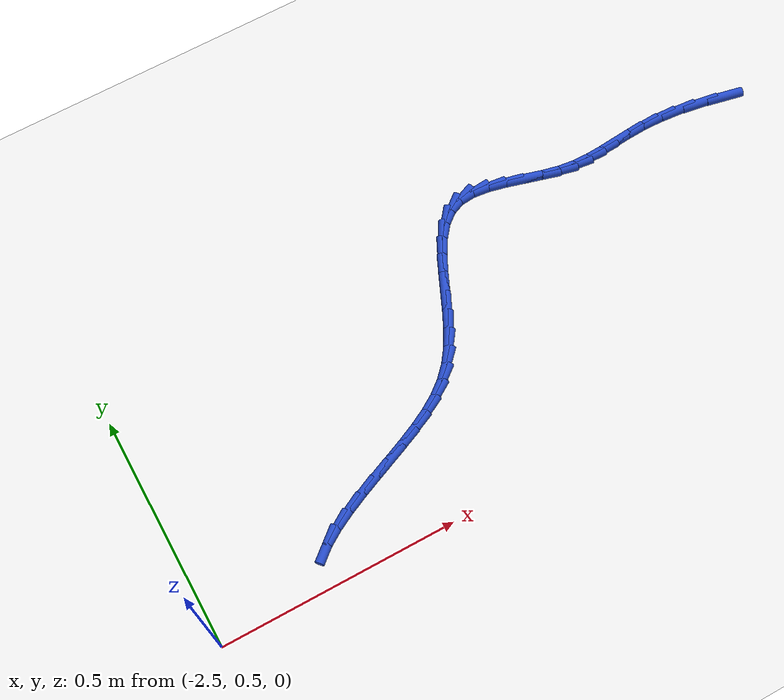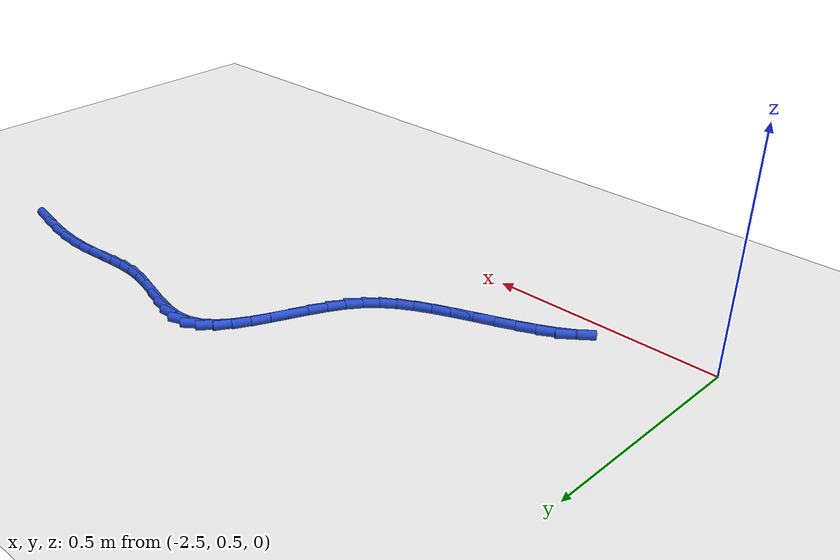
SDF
<sdf version="1.6">
 <world name="default">
  <model name="ground_plane">
   <static>1</static>
   <link name="link">
    <collision name="collision">
     <geometry><plane><normal>0 0 1</normal><size>100 100</size></plane></geometry>
     <surface><friction><ode><mu>100</mu><mu2>50</mu2></ode></friction></surface>
    </collision>
    <visual name="visual">
     <cast_shadows>0</cast_shadows>
     <geometry><plane><normal>0 0 1</normal><size>100 100</size></plane></geometry>
     <material>
      <script><uri>file://media/materials/scripts/gazebo.material</uri><name>Gazebo/WhiteGlow</name></script>
     </material>
    </visual>
   </link>
  </model>
  <model name="line">
   <link name="link_50">
    <pose>-1.050175589777611 1.0270825443489389 0.01 0 1.57 -0.20787791092671823</pose>
    <collision name="collision">
     <geometry><cylinder><radius>0.01</radius><length>0.08</length></cylinder></geometry>
    </collision>
    <visual name="visual">
     <material>
      <script><name>Gazebo/Blue</name><uri>file://media/materials/scripts/gazebo.material</uri></script>
     </material>
     <geometry><cylinder><radius>0.01</radius><length>0.08</length></cylinder></geometry>
    </visual>
   </link>
   <link name="link_51">
    <pose>-1.1038840983563896 1.0384110087869691 0.01 0 1.57 -0.15789460859083612</pose>
    <collision name="collision">
     <geometry><cylinder><radius>0.01</radius><length>0.08</length></cylinder></geometry>
    </collision>
    <visual name="visual">
     <material>
      <script><name>Gazebo/Blue</name><uri>file://media/materials/scripts/gazebo.material</uri></script>
     </material>
     <geometry><cylinder><radius>0.01</radius><length>0.08</length></cylinder></geometry>
    </visual>
   </link>
   <link name="link_52">
    <pose>-1.1540280865985686 1.0463949330131146 0.01 0 1.57 -0.08477968536149154</pose>
    <collision name="collision">
     <geometry><cylinder><radius>0.01</radius><length>0.08</length></cylinder></geometry>
    </collision>
    <visual name="visual">
     <material>
      <script><name>Gazebo/Blue</name><uri>file://media/materials/scripts/gazebo.material</uri></script>
     </material>
     <geometry><cylinder><radius>0.01</radius><length>0.08</length></cylinder></geometry>
    </visual>
   </link>
   <link name="link_53">
    <pose>-1.199242314472679 1.0502373914521907 0.01 0 1.57 -0.009186519523485804</pose>
    <collision name="collision">
     <geometry><cylinder><radius>0.01</radius><length>0.08</length></cylinder></geometry>
    </collision>
    <visual name="visual">
     <material>
      <script><name>Gazebo/Blue</name><uri>file://media/materials/scripts/gazebo.material</uri></script>
     </material>
     <geometry><cylinder><radius>0.01</radius><length>0.08</length></cylinder></geometry>
    </visual>
   </link>
   <link name="link_54">
    <pose>-1.2399213339603703 1.050611100571674 0.01 0 1.57 0.05153656360541167</pose>
    <collision name="collision">
     <geometry><cylinder><radius>0.01</radius><length>0.08</length></cylinder></geometry>
    </collision>
    <visual name="visual">
     <material>
      <script><name>Gazebo/Blue</name><uri>file://media/materials/scripts/gazebo.material</uri></script>
     </material>
     <geometry><cylinder><radius>0.01</radius><length>0.08</length></cylinder></geometry>
    </visual>
   </link>
   <link name="link_55">
    <pose>-1.2770659790074037 1.0486950965958768 0.01 0 1.57 0.0872114523953904</pose>
    <collision name="collision">
     <geometry><cylinder><radius>0.01</radius><length>0.08</length></cylinder></geometry>
    </collision>
    <visual name="visual">
     <material>
      <script><name>Gazebo/Blue</name><uri>file://media/materials/scripts/gazebo.material</uri></script>
     </material>
     <geometry><cylinder><radius>0.01</radius><length>0.08</length></cylinder></geometry>
    </visual>
   </link>
   <link name="link_56">
    <pose>-1.3116776473134988 1.0456688865527721 0.01 0 1.57 0.089149440896652</pose>
    <collision name="collision">
     <geometry><cylinder><radius>0.01</radius><length>0.08</length></cylinder></geometry>
    </collision>
    <visual name="visual">
     <material>
      <script><name>Gazebo/Blue</name><uri>file://media/materials/scripts/gazebo.material</uri></script>
     </material>
     <geometry><cylinder><radius>0.01</radius><length>0.08</length></cylinder></geometry>
    </visual>
   </link>
   <link name="link_57">
    <pose>-1.3447577365783774 1.0427119774703315 0.01 0 1.57 0.05242828267476847</pose>
    <collision name="collision">
     <geometry><cylinder><radius>0.01</radius><length>0.08</length></cylinder></geometry>
    </collision>
    <visual name="visual">
     <material>
      <script><name>Gazebo/Blue</name><uri>file://media/materials/scripts/gazebo.material</uri></script>
     </material>
     <geometry><cylinder><radius>0.01</radius><length>0.08</length></cylinder></geometry>
    </visual>
   </link>
   <link name="link_58">
    <pose>-1.3773076445017587 1.041003876376529 0.01 0 1.57 -0.02180724513530175</pose>
    <collision name="collision">
     <geometry><cylinder><radius>0.01</radius><length>0.08</length></cylinder></geometry>
    </collision>
    <visual name="visual">
     <material>
      <script><name>Gazebo/Blue</name><uri>file://media/materials/scripts/gazebo.material</uri></script>
     </material>
     <geometry><cylinder><radius>0.01</radius><length>0.08</length></cylinder></geometry>
    </visual>
   </link>
   <link name="link_59">
    <pose>-1.4103287687833657 1.0417240902993374 0.01 0 1.57 -0.12481042961064903</pose>
    <collision name="collision">
     <geometry><cylinder><radius>0.01</radius><length>0.08</length></cylinder></geometry>
    </collision>
    <visual name="visual">
     <material>
      <script><name>Gazebo/Blue</name><uri>file://media/materials/scripts/gazebo.material</uri></script>
     </material>
     <geometry><cylinder><radius>0.01</radius><length>0.08</length></cylinder></geometry>
    </visual>
   </link>
   <link name="link_60">
    <pose>-1.4448222674865456 1.0460517335571842 0.01 0 1.57 -0.2255673482702717</pose>
    <collision name="collision">
     <geometry><cylinder><radius>0.01</radius><length>0.08</length></cylinder></geometry>
    </collision>
    <visual name="visual">
     <material>
      <script><name>Gazebo/Blue</name><uri>file://media/materials/scripts/gazebo.material</uri></script>
     </material>
     <geometry><cylinder><radius>0.01</radius><length>0.08</length></cylinder></geometry>
    </visual>
   </link>
   <link name="link_61">
    <pose>-1.481341367666463 1.054431863358171 0.01 0 1.57 -0.27444721846377584</pose>
    <collision name="collision">
     <geometry><cylinder><radius>0.01</radius><length>0.08</length></cylinder></geometry>
    </collision>
    <visual name="visual">
     <material>
      <script><name>Gazebo/Blue</name><uri>file://media/materials/scripts/gazebo.material</uri></script>
     </material>
     <geometry><cylinder><radius>0.01</radius><length>0.08</length></cylinder></geometry>
    </visual>
   </link>
   <link name="link_62">
    <pose>-1.5190617927091894 1.0650521214952655 0.01 0 1.57 -0.27355057682879086</pose>
    <collision name="collision">
     <geometry><cylinder><radius>0.01</radius><length>0.08</length></cylinder></geometry>
    </collision>
    <visual name="visual">
     <material>
      <script><name>Gazebo/Blue</name><uri>file://media/materials/scripts/gazebo.material</uri></script>
     </material>
     <geometry><cylinder><radius>0.01</radius><length>0.08</length></cylinder></geometry>
    </visual>
   </link>
   <link name="link_63">
    <pose>-1.5568953336264255 1.0756676245901169 0.01 0 1.57 -0.2231913755646232</pose>
    <collision name="collision">
     <geometry><cylinder><radius>0.01</radius><length>0.08</length></cylinder></geometry>
    </collision>
    <visual name="visual">
     <material>
      <script><name>Gazebo/Blue</name><uri>file://media/materials/scripts/gazebo.material</uri></script>
     </material>
     <geometry><cylinder><radius>0.01</radius><length>0.08</length></cylinder></geometry>
    </visual>
   </link>
   <link name="link_64">
    <pose>-1.5937537814298677 1.0840334892643733 0.01 0 1.57 -0.11080528452260247</pose>
    <collision name="collision">
     <geometry><cylinder><radius>0.01</radius><length>0.08</length></cylinder></geometry>
    </collision>
    <visual name="visual">
     <material>
      <script><name>Gazebo/Blue</name><uri>file://media/materials/scripts/gazebo.material</uri></script>
     </material>
     <geometry><cylinder><radius>0.01</radius><length>0.08</length></cylinder></geometry>
    </visual>
   </link>
   <link name="link_65">
    <pose>-1.628548927131216 1.0879048321396847 0.01 0 1.57 0.09038933636369866</pose>
    <collision name="collision">
     <geometry><cylinder><radius>0.01</radius><length>0.08</length></cylinder></geometry>
    </collision>
    <visual name="visual">
     <material>
      <script><name>Gazebo/Blue</name><uri>file://media/materials/scripts/gazebo.material</uri></script>
     </material>
     <geometry><cylinder><radius>0.01</radius><length>0.08</length></cylinder></geometry>
    </visual>
   </link>
   <link name="link_66">
    <pose>-1.6601925617421696 1.0850367698376995 0.01 0 1.57 0.3955872255324894</pose>
    <collision name="collision">
     <geometry><cylinder><radius>0.01</radius><length>0.08</length></cylinder></geometry>
    </collision>
    <visual name="visual">
     <material>
      <script><name>Gazebo/Blue</name><uri>file://media/materials/scripts/gazebo.material</uri></script>
     </material>
     <geometry><cylinder><radius>0.01</radius><length>0.08</length></cylinder></geometry>
    </visual>
   </link>
   <link name="link_67">
    <pose>-1.6877645495275815 1.0735226720178574 0.01 0 1.57 0.6913963453238366</pose>
    <collision name="collision">
     <geometry><cylinder><radius>0.01</radius><length>0.08</length></cylinder></geometry>
    </collision>
    <visual name="visual">
     <material>
      <script><name>Gazebo/Blue</name><uri>file://media/materials/scripts/gazebo.material</uri></script>
     </material>
     <geometry><cylinder><radius>0.01</radius><length>0.08</length></cylinder></geometry>
    </visual>
   </link>
   <link name="link_68">
    <pose>-1.71153390100302 1.0538491049019865 0.01 0 1.57 0.903109626143905</pose>
    <collision name="collision">
     <geometry><cylinder><radius>0.01</radius><length>0.08</length></cylinder></geometry>
    </collision>
    <visual name="visual">
     <material>
      <script><name>Gazebo/Blue</name><uri>file://media/materials/scripts/gazebo.material</uri></script>
     </material>
     <geometry><cylinder><radius>0.01</radius><length>0.08</length></cylinder></geometry>
    </visual>
   </link>
   <link name="link_69">
    <pose>-1.7322825432388422 1.027534896416462 0.01 0 1.57 1.0385407945591603</pose>
    <collision name="collision">
     <geometry><cylinder><radius>0.01</radius><length>0.08</length></cylinder></geometry>
    </collision>
    <visual name="visual">
     <material>
      <script><name>Gazebo/Blue</name><uri>file://media/materials/scripts/gazebo.material</uri></script>
     </material>
     <geometry><cylinder><radius>0.01</radius><length>0.08</length></cylinder></geometry>
    </visual>
   </link>
   <link name="link_70">
    <pose>-1.750794422602795 0.9961029383911211 0.01 0 1.57 1.1175795403811848</pose>
    <collision name="collision">
     <geometry><cylinder><radius>0.01</radius><length>0.08</length></cylinder></geometry>
    </collision>
    <visual name="visual">
     <material>
      <script><name>Gazebo/Blue</name><uri>file://media/materials/scripts/gazebo.material</uri></script>
     </material>
     <geometry><cylinder><radius>0.01</radius><length>0.08</length></cylinder></geometry>
    </visual>
   </link>
   <link name="link_71">
    <pose>-1.767853485462622 0.9610761226558012 0.01 0 1.57 1.1547835154055661</pose>
    <collision name="collision">
     <geometry><cylinder><radius>0.01</radius><length>0.08</length></cylinder></geometry>
    </collision>
    <visual name="visual">
     <material>
      <script><name>Gazebo/Blue</name><uri>file://media/materials/scripts/gazebo.material</uri></script>
     </material>
     <geometry><cylinder><radius>0.01</radius><length>0.08</length></cylinder></geometry>
    </visual>
   </link>
   <link name="link_72">
    <pose>-1.7842436781860682 0.9239773410403385 0.01 0 1.57 1.157620720772946</pose>
    <collision name="collision">
     <geometry><cylinder><radius>0.01</radius><length>0.08</length></cylinder></geometry>
    </collision>
    <visual name="visual">
     <material>
      <script><name>Gazebo/Blue</name><uri>file://media/materials/scripts/gazebo.material</uri></script>
     </material>
     <geometry><cylinder><radius>0.01</radius><length>0.08</length></cylinder></geometry>
    </visual>
   </link>
   <link name="link_73">
    <pose>-1.8007489471408802 0.8863294853745715 0.01 0 1.57 1.127701262763376</pose>
    <collision name="collision">
     <geometry><cylinder><radius>0.01</radius><length>0.08</length></cylinder></geometry>
    </collision>
    <visual name="visual">
     <material>
      <script><name>Gazebo/Blue</name><uri>file://media/materials/scripts/gazebo.material</uri></script>
     </material>
     <geometry><cylinder><radius>0.01</radius><length>0.08</length></cylinder></geometry>
    </visual>
   </link>
   <link name="link_74">
    <pose>-1.8181532386948018 0.8496554474883358 0.01 0 1.57 1.0614679715722342</pose>
    <collision name="collision">
     <geometry><cylinder><radius>0.01</radius><length>0.08</length></cylinder></geometry>
    </collision>
    <visual name="visual">
     <material>
      <script><name>Gazebo/Blue</name><uri>file://media/materials/scripts/gazebo.material</uri></script>
     </material>
     <geometry><cylinder><radius>0.01</radius><length>0.08</length></cylinder></geometry>
    </visual>
   </link>
   <link name="link_75">
    <pose>-1.837240499215578 0.8154781192114696 0.01 0 1.57 0.9508166535194016</pose>
    <collision name="collision">
     <geometry><cylinder><radius>0.01</radius><length>0.08</length></cylinder></geometry>
    </collision>
    <visual name="visual">
     <material>
      <script><name>Gazebo/Blue</name><uri>file://media/materials/scripts/gazebo.material</uri></script>
     </material>
     <geometry><cylinder><radius>0.01</radius><length>0.08</length></cylinder></geometry>
    </visual>
   </link>
   <link name="link_76">
    <pose>-1.8587872111108235 0.7852955078681247 0.01 0 1.57 0.8097696549413556</pose>
    <collision name="collision">
     <geometry><cylinder><radius>0.01</radius><length>0.08</length></cylinder></geometry>
    </collision>
    <visual name="visual">
     <material>
      <script><name>Gazebo/Blue</name><uri>file://media/materials/scripts/gazebo.material</uri></script>
     </material>
     <geometry><cylinder><radius>0.01</radius><length>0.08</length></cylinder></geometry>
    </visual>
   </link>
   <link name="link_77">
    <pose>-1.883266209819236 0.7595932755137452 0.01 0 1.57 0.6767906121939151</pose>
    <collision name="collision">
     <geometry><cylinder><radius>0.01</radius><length>0.08</length></cylinder></geometry>
    </collision>
    <visual name="visual">
     <material>
      <script><name>Gazebo/Blue</name><uri>file://media/materials/scripts/gazebo.material</uri></script>
     </material>
     <geometry><cylinder><radius>0.01</radius><length>0.08</length></cylinder></geometry>
    </visual>
   </link>
   <link name="link_78">
    <pose>-1.9107478987359694 0.7375153939616118 0.01 0 1.57 0.5661609985635575</pose>
    <collision name="collision">
     <geometry><cylinder><radius>0.01</radius><length>0.08</length></cylinder></geometry>
    </collision>
    <visual name="visual">
     <material>
      <script><name>Gazebo/Blue</name><uri>file://media/materials/scripts/gazebo.material</uri></script>
     </material>
     <geometry><cylinder><radius>0.01</radius><length>0.08</length></cylinder></geometry>
    </visual>
   </link>
   <link name="link_79">
    <pose>-1.941274967638765 0.7181134390772858 0.01 0 1.57 0.48406490635298116</pose>
    <collision name="collision">
     <geometry><cylinder><radius>0.01</radius><length>0.08</length></cylinder></geometry>
    </collision>
    <visual name="visual">
     <material>
      <script><name>Gazebo/Blue</name><uri>file://media/materials/scripts/gazebo.material</uri></script>
     </material>
     <geometry><cylinder><radius>0.01</radius><length>0.08</length></cylinder></geometry>
    </visual>
   </link>
   <link name="link_80">
    <pose>-1.9748901063053654 0.7004389867263263 0.01 0 1.57 0.4309516659975358</pose>
    <collision name="collision">
     <geometry><cylinder><radius>0.01</radius><length>0.08</length></cylinder></geometry>
    </collision>
    <visual name="visual">
     <material>
      <script><name>Gazebo/Blue</name><uri>file://media/materials/scripts/gazebo.material</uri></script>
     </material>
     <geometry><cylinder><radius>0.01</radius><length>0.08</length></cylinder></geometry>
    </visual>
   </link>
   <link name="link_81">
    <pose>-2.0116087986780204 0.6835567101678456 0.01 0 1.57 0.4030996805885406</pose>
    <collision name="collision">
     <geometry><cylinder><radius>0.01</radius><length>0.08</length></cylinder></geometry>
    </collision>
    <visual name="visual">
     <material>
      <script><name>Gazebo/Blue</name><uri>file://media/materials/scripts/gazebo.material</uri></script>
     </material>
     <geometry><cylinder><radius>0.01</radius><length>0.08</length></cylinder></geometry>
    </visual>
   </link>
   <link name="link_82">
    <pose>-2.0507814652660357 0.6668514565266183 0.01 0 1.57 0.39532140853153785</pose>
    <collision name="collision">
     <geometry><cylinder><radius>0.01</radius><length>0.08</length></cylinder></geometry>
    </collision>
    <visual name="visual">
     <material>
      <script><name>Gazebo/Blue</name><uri>file://media/materials/scripts/gazebo.material</uri></script>
     </material>
     <geometry><cylinder><radius>0.01</radius><length>0.08</length></cylinder></geometry>
    </visual>
   </link>
   <link name="link_83">
    <pose>-2.091070850795724 0.6500391327975827 0.01 0 1.57 0.40551296501582323</pose>
    <collision name="collision">
     <geometry><cylinder><radius>0.01</radius><length>0.08</length></cylinder></geometry>
    </collision>
    <visual name="visual">
     <material>
      <script><name>Gazebo/Blue</name><uri>file://media/materials/scripts/gazebo.material</uri></script>
     </material>
     <geometry><cylinder><radius>0.01</radius><length>0.08</length></cylinder></geometry>
    </visual>
   </link>
   <link name="link_84">
    <pose>-2.131107970102979 0.6328509213331404 0.01 0 1.57 0.43460550154439176</pose>
    <collision name="collision">
     <geometry><cylinder><radius>0.01</radius><length>0.08</length></cylinder></geometry>
    </collision>
    <visual name="visual">
     <material>
      <script><name>Gazebo/Blue</name><uri>file://media/materials/scripts/gazebo.material</uri></script>
     </material>
     <geometry><cylinder><radius>0.01</radius><length>0.08</length></cylinder></geometry>
    </visual>
   </link>
   <link name="link_85">
    <pose>-2.169523838023697 0.6150180044856917 0.01 0 1.57 0.48671607632007813</pose>
    <collision name="collision">
     <geometry><cylinder><radius>0.01</radius><length>0.08</length></cylinder></geometry>
    </collision>
    <visual name="visual">
     <material>
      <script><name>Gazebo/Blue</name><uri>file://media/materials/scripts/gazebo.material</uri></script>
     </material>
     <geometry><cylinder><radius>0.01</radius><length>0.08</length></cylinder></geometry>
    </visual>
   </link>
   <link name="link_86">
    <pose>-2.2049494693937723 0.5962715646076375 0.01 0 1.57 0.570369272431806</pose>
    <collision name="collision">
     <geometry><cylinder><radius>0.01</radius><length>0.08</length></cylinder></geometry>
    </collision>
    <visual name="visual">
     <material>
      <script><name>Gazebo/Blue</name><uri>file://media/materials/scripts/gazebo.material</uri></script>
     </material>
     <geometry><cylinder><radius>0.01</radius><length>0.08</length></cylinder></geometry>
    </visual>
   </link>
   <link name="link_87">
    <pose>-2.236015879049099 0.5763427840513783 0.01 0 1.57 0.7008735488887303</pose>
    <collision name="collision">
     <geometry><cylinder><radius>0.01</radius><length>0.08</length></cylinder></geometry>
    </collision>
    <visual name="visual">
     <material>
      <script><name>Gazebo/Blue</name><uri>file://media/materials/scripts/gazebo.material</uri></script>
     </material>
     <geometry><cylinder><radius>0.01</radius><length>0.08</length></cylinder></geometry>
    </visual>
   </link>
  </model>
 </world>
</sdf>
